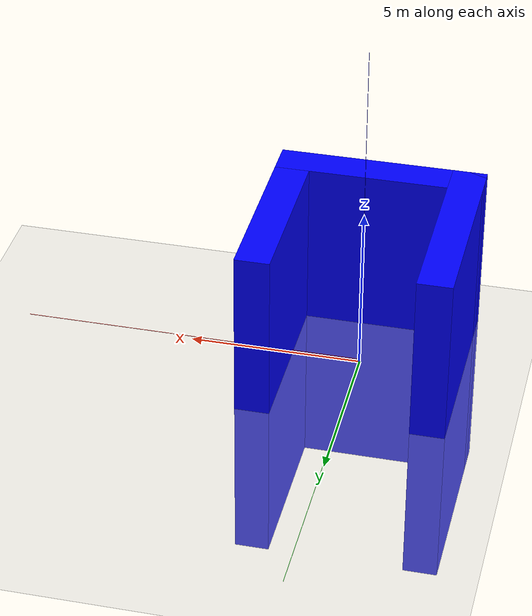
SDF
<sdf version="1.9">
 <world name="iris_runway">
  <physics name="1ms" type="ignore">
   <max_step_size>0.001</max_step_size>
   <real_time_factor>1.0</real_time_factor>
  </physics>
  <plugin filename="gz-sim-physics-system" name="gz::sim::systems::Physics"/>
  <plugin filename="gz-sim-sensors-system" name="gz::sim::systems::Sensors">
   <render_engine>ogre2</render_engine>
  </plugin>
  <plugin filename="gz-sim-user-commands-system" name="gz::sim::systems::UserCommands"/>
  <plugin filename="gz-sim-scene-broadcaster-system" name="gz::sim::systems::SceneBroadcaster"/>
  <plugin filename="gz-sim-imu-system" name="gz::sim::systems::Imu"/>
  <plugin filename="gz-sim-navsat-system" name="gz::sim::systems::NavSat"/>
  <light type="directional" name="sun">
   <pose>0 0 10 0 0 0</pose>
   <diffuse>0.8 0.8 0.8 1</diffuse>
   <specular>0.8 0.8 0.8 1</specular>
   <attenuation>
    <range>1000</range>
    <constant>0.9</constant>
    <linear>0.01</linear>
    <quadratic>0.001</quadratic>
   </attenuation>
   <direction>-0.5 0.1 -0.9</direction>
  </light>
  <spherical_coordinates>
   <latitude_deg>-35.363262</latitude_deg>
   <longitude_deg>149.165237</longitude_deg>
   <elevation>584</elevation>
   <heading_deg>0</heading_deg>
   <surface_model>EARTH_WGS84</surface_model>
  </spherical_coordinates>
  <model name="axes">
   <static>1</static>
   <link name="link">
    <visual name="r">
     <cast_shadows>0</cast_shadows>
     <pose>5 0 0.1 0 0 0</pose>
     <geometry><box><size>10 0.01 0.01</size></box></geometry>
     <material>
      <ambient>1 0 0 0.8</ambient>
      <diffuse>1 0 0 0.8</diffuse>
      <emissive>1 0 0 0.8</emissive>
      <specular>0.5 0.5 0.5 0.8</specular>
     </material>
    </visual>
    <visual name="g">
     <cast_shadows>0</cast_shadows>
     <pose>0 5 0.1 0 0 0</pose>
     <geometry><box><size>0.01 10 0.01</size></box></geometry>
     <material>
      <ambient>0 1 0 0.8</ambient>
      <diffuse>0 1 0 0.8</diffuse>
      <emissive>0 1 0 0.8</emissive>
      <specular>0.5 0.5 0.5 0.8</specular>
     </material>
    </visual>
    <visual name="b">
     <cast_shadows>0</cast_shadows>
     <pose>0 0 5.1 0 0 0</pose>
     <geometry><box><size>0.01 0.01 10</size></box></geometry>
     <material>
      <ambient>0 0 1 0.8</ambient>
      <diffuse>0 0 1 0.8</diffuse>
      <emissive>0 0 1 0.8</emissive>
      <specular>0.5 0.5 0.5 0.8</specular>
     </material>
    </visual>
    <sensor name="navsat_sensor" type="navsat"><always_on>1</always_on><update_rate>1</update_rate></sensor>
   </link>
  </model>
  <model name="wall">
   <static>true</static>
   <pose>2.5 0 0 0 0 0</pose>
   <link name="box">
    <visual name="visual">
     <geometry><box><size>1 6 10.0</size></box></geometry>
     <material>
      <ambient>0.0 0.0 1.0 1</ambient>
      <diffuse>0.0 0.0 1.0 1</diffuse>
      <specular>0.0 0.0 1.0 1</specular>
     </material>
    </visual>
    <collision name="collision"><geometry><box><size>1 6 10.0</size></box></geometry></collision>
   </link>
  </model>
  <model name="wall_back">
   <static>true</static>
   <pose>-2.5 0 0 0 0 0</pose>
   <link name="box">
    <visual name="visual">
     <geometry><box><size>1 6 10.0</size></box></geometry>
     <material>
      <ambient>0.0 0.0 1.0 1</ambient>
      <diffuse>0.0 0.0 1.0 1</diffuse>
      <specular>0.0 0.0 1.0 1</specular>
     </material>
    </visual>
    <collision name="collision"><geometry><box><size>1 6 10.0</size></box></geometry></collision>
   </link>
  </model>
  <model name="wall_right">
   <static>true</static>
   <pose>0 -2.5 0 0 0 1.5708</pose>
   <link name="box">
    <visual name="visual">
     <geometry><box><size>1 6 10.0</size></box></geometry>
     <material>
      <ambient>0.0 0.0 1.0 1</ambient>
      <diffuse>0.0 0.0 1.0 1</diffuse>
      <specular>0.0 0.0 1.0 1</specular>
     </material>
    </visual>
    <collision name="collision"><geometry><box><size>1 5 10.0</size></box></geometry></collision>
   </link>
  </model>
  <model name="ground_plane">
   <static>true</static>
   <link name="link">
    <collision name="collision"><geometry><plane><normal>0 0 1</normal></plane></geometry></collision>
    <visual name="visual">
     <geometry><plane><normal>0 0 1</normal><size>100 100</size></plane></geometry>
     <material>
      <ambient>0.8 0.8 0.8 1</ambient>
      <diffuse>0.8 0.8 0.8 1</diffuse>
      <specular>0.8 0.8 0.8 1</specular>
     </material>
    </visual>
   </link>
  </model>
 </world>
</sdf>
